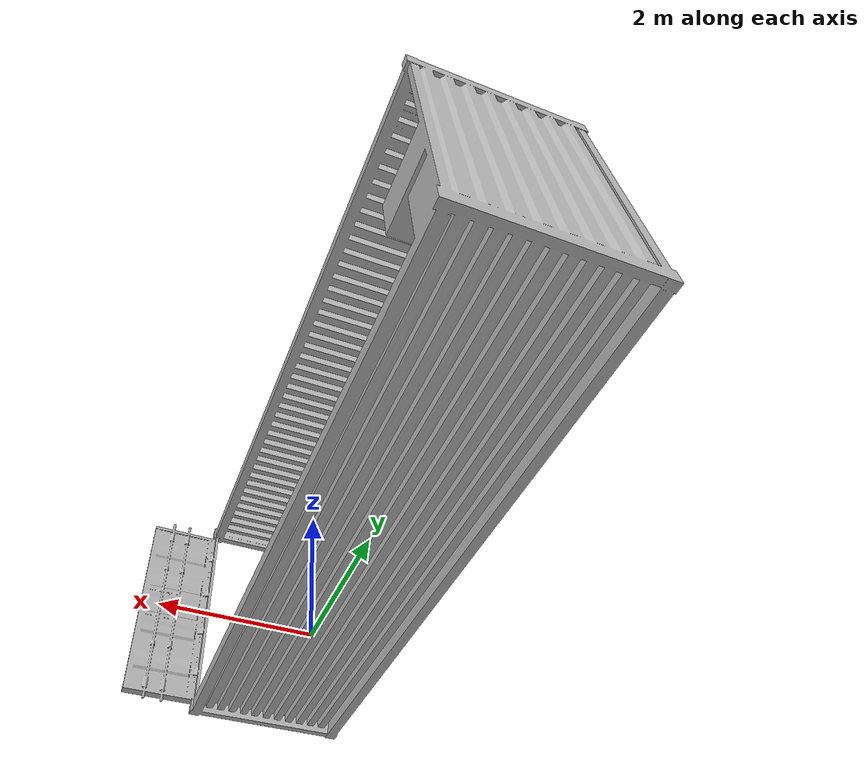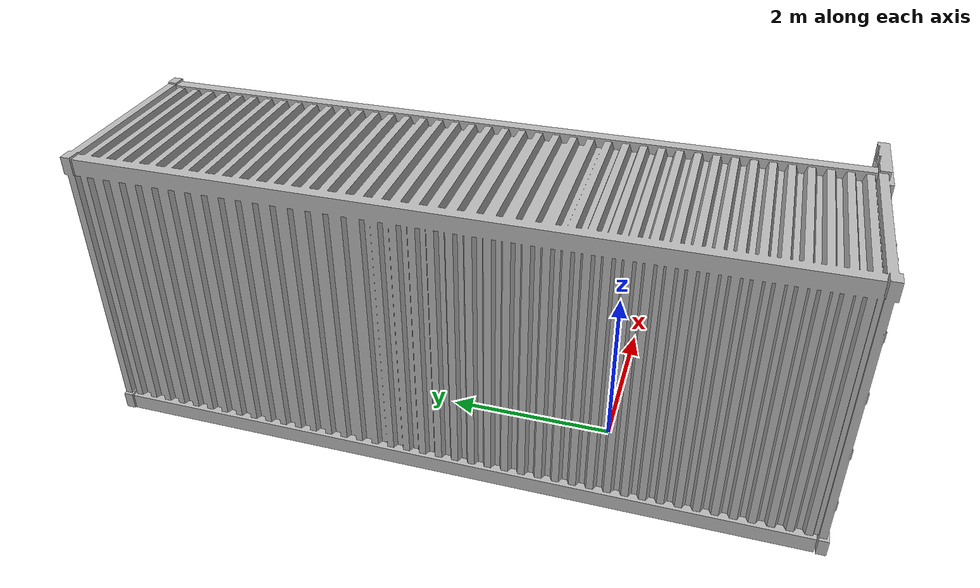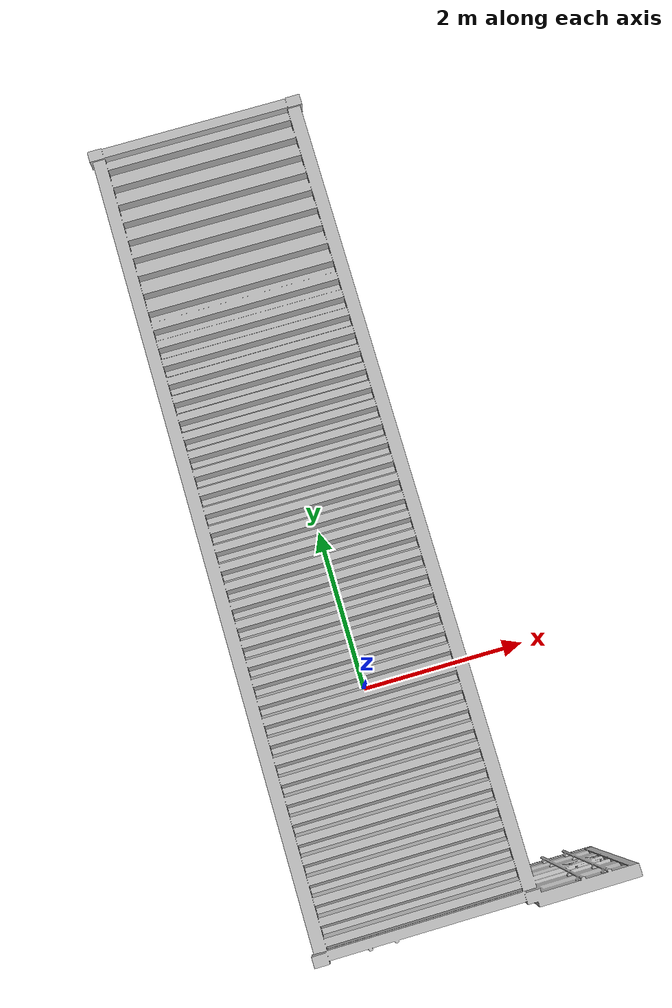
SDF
<?xml version="1.0" ?>
<sdf version="1.6">
  <model name="shipping_container_conveyor_tall_ariac">
    <static>true</static>
    <link name="link">
      <collision name="collision_belt_side_front">
        <pose>0.83 1.6275 0.41 0 0 0</pose>
        <max_contacts>10</max_contacts>
        <geometry>
          <box>
            <size>0.105 7.98 0.4</size>
          </box>
        </geometry>
      </collision>

      <collision name="collision_belt_side_back">
        <pose>0.185 1.6275 0.41 0 0 0</pose>
        <max_contacts>10</max_contacts>
        <geometry>
          <box>
            <size>0.105 7.98 0.4</size>
          </box>
        </geometry>
      </collision>

      <visual name="visual">
        <geometry>
          <mesh>
            <scale>0.9 0.7 1.3</scale>
            <uri>model://shipping_container_conveyor_tall_ariac/meshes/ShippingContainer_Textured.obj</uri>
          </mesh>
        </geometry>
      </visual>
    </link>
  </model>
</sdf>
